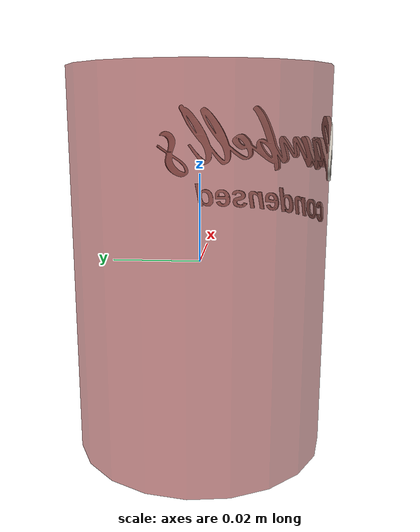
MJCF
<?xml version='1.0' encoding='utf-8'?>
<mujoco model="more_canned_food_24">
  <asset>
    <mesh file="visual/model_normalized_0.obj" name="model_normalized_0_vis" scale="0.08549999999999995 0.08549999999999995 0.08549999999999995" refquat="1.0 0.0 0.0 0.0" />
    <texture type="2d" name="image0" file="visual/image0.png" />
    <material name="Can_01" texture="image0" specular="0.5" shininess="0.359999993" />
    <mesh file="collision/collision_mesh_collision_0.obj" name="canned_collision_mesh_0" scale="0.08549999999999995 0.08549999999999995 0.08549999999999995" refquat="1.0 0.0 0.0 0.0" />
    <mesh file="collision/collision_mesh_collision_1.obj" name="canned_collision_mesh_1" scale="0.08549999999999995 0.08549999999999995 0.08549999999999995" refquat="1.0 0.0 0.0 0.0" />
  </asset>
  <default>
    <default class="region">
      <geom group="1" conaffinity="0" contype="0" rgba="0 1 0 0" mass="0" />
    </default>
    <default class="collision">
      <geom group="0" rgba="0.5 0 0 0.5" density="1334.463367907" />
    </default>
  </default>
  <worldbody>
    <body>
      <body name="object">
        <geom solimp="0.998 0.998 0.001" solref="0.001 1" density="133.446336791" friction="0.95 0.3 0.1" type="mesh" mesh="model_normalized_0_vis" conaffinity="0" contype="0" group="1" material="Can_01" />
        <geom class="region" name="reg_bbox" type="box" pos="0.0 0.0 0.0" size="0.028280130479999985 0.028280130479999985 0.042749999999999976" />
        <geom mesh="canned_collision_mesh_0" type="mesh" class="collision" />
        <geom mesh="canned_collision_mesh_1" type="mesh" class="collision" />
      </body>
    </body>
  </worldbody>
</mujoco>
